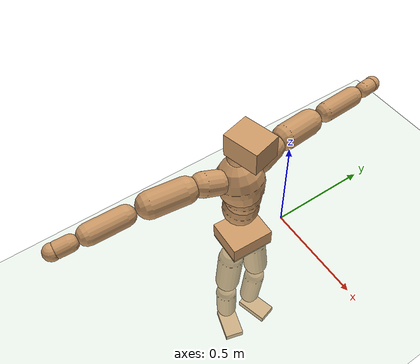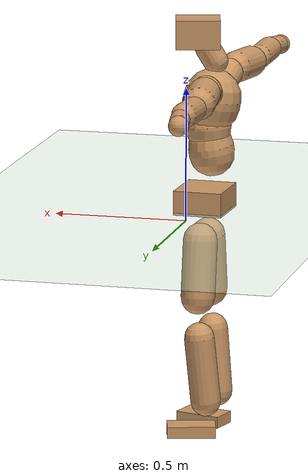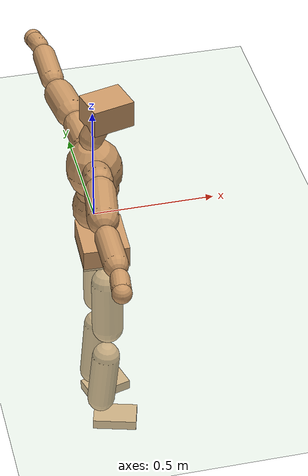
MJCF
<mujoco model="humanoid">
  <compiler coordinate="local" angle="radian"/>
  <default>
    <joint damping="0.0" armature="0.01" stiffness="0.0" limited="true"/>
    <geom conaffinity="1" condim="3" contype="7" margin="0.001" rgba="0.8 0.6 .4 1"/>
  </default>
  <asset>
    <texture type="skybox" builtin="gradient" rgb1=".4 .5 .6" rgb2="0 0 0" width="100" height="100"/>
    <texture builtin="flat" height="1278" mark="cross" markrgb="1 1 1" name="texgeom" random="0.01" rgb1="0.8 0.6 0.4" rgb2="0.8 0.6 0.4" type="cube" width="127"/>
    <texture builtin="checker" height="100" name="texplane" rgb1="0 0 0" rgb2="0.8 0.8 0.8" type="2d" width="100"/>
    <material name="MatPlane" reflectance="0.5" shininess="1" specular="1" texrepeat="60 60" texture="texplane"/>
    <material name="geom" texture="texgeom" texuniform="true"/>
  </asset>
  <worldbody>
    <light cutoff="100" diffuse="1 1 1" dir="-0 0 -1.3" directional="true" exponent="1" pos="0 0 1.3" specular=".1 .1 .1"/>
    <geom conaffinity="1" condim="3" name="floor" pos="0 0 0" rgba="0.8 0.9 0.8 1" size="100 100 .2" type="plane" material="MatPlane"/>
    <body name="Pelvis" pos="-0.0036 -0.2286 0.0427">
      <freejoint name="Pelvis"/>
      <geom type="box" contype="1" conaffinity="1" density="500" pos="-0.0109 0.0004 -0.0076" size="0.0925 0.1064 0.046" quat="0.9998 0.0000 0.0000 -0.0190" name="Pelvis"/>
      <body name="L_Hip" pos="-0.0118 0.0605 -0.0788">
        <joint name="L_Hip_x" type="hinge" pos="0 0 0" axis="1 0 0" stiffness="800" damping="80" armature="0.02" range="-180.0000 180.0000"/>
        <joint name="L_Hip_y" type="hinge" pos="0 0 0" axis="0 1 0" stiffness="800" damping="80" armature="0.02" range="-180.0000 180.0000"/>
        <joint name="L_Hip_z" type="hinge" pos="0 0 0" axis="0 0 1" stiffness="800" damping="80" armature="0.02" range="-180.0000 180.0000"/>
        <geom type="capsule" contype="1" conaffinity="1" density="500" fromto="0.0011 0.0074 -0.0719 0.0044 0.0298 -0.2876" size="0.0643" name="L_Hip"/>
        <body name="L_Knee" pos="0.0055 0.0372 -0.3595">
          <joint name="L_Knee_x" type="hinge" pos="0 0 0" axis="1 0 0" stiffness="800" damping="80" armature="0.02" range="-180.0000 180.0000"/>
          <joint name="L_Knee_y" type="hinge" pos="0 0 0" axis="0 1 0" stiffness="800" damping="80" armature="0.02" range="-180.0000 180.0000"/>
          <joint name="L_Knee_z" type="hinge" pos="0 0 0" axis="0 0 1" stiffness="800" damping="80" armature="0.02" range="-180.0000 180.0000"/>
          <geom type="capsule" contype="1" conaffinity="1" density="500" fromto="-0.0077 -0.0033 -0.0825 -0.0307 -0.0131 -0.3302" size="0.0568" name="L_Knee"/>
          <body name="L_Ankle" pos="-0.0384 -0.0164 -0.4127">
            <joint name="L_Ankle_x" type="hinge" pos="0 0 0" axis="1 0 0" stiffness="800" damping="80" armature="0.02" range="-180.0000 180.0000"/>
            <joint name="L_Ankle_y" type="hinge" pos="0 0 0" axis="0 1 0" stiffness="800" damping="80" armature="0.02" range="-180.0000 180.0000"/>
            <joint name="L_Ankle_z" type="hinge" pos="0 0 0" axis="0 0 1" stiffness="800" damping="80" armature="0.02" range="-180.0000 180.0000"/>
            <geom type="box" contype="1" conaffinity="1" density="500" pos="0.0608 0.0169 -0.0288" size="0.091 0.0505 0.0222" quat="0.9909 0.0000 0.0000 0.1348" name="L_Ankle"/>
            <body name="L_Toe" pos="0.1216 0.0337 -0.0577">
              <joint name="L_Toe_x" type="hinge" pos="0 0 0" axis="1 0 0" stiffness="500" damping="50" armature="0.02" range="-180.0000 180.0000"/>
              <joint name="L_Toe_y" type="hinge" pos="0 0 0" axis="0 1 0" stiffness="500" damping="50" armature="0.02" range="-180.0000 180.0000"/>
              <joint name="L_Toe_z" type="hinge" pos="0 0 0" axis="0 0 1" stiffness="500" damping="50" armature="0.02" range="-180.0000 180.0000"/>
              <geom type="box" contype="1" conaffinity="1" density="500" pos="0.0000 0.0000 0.0272" size="0.0011 0.0025 0.001" quat="0.9901 0.0000 0.0000 0.1402" name="L_Toe"/>
            </body>
          </body>
        </body>
      </body>
      <body name="R_Hip" pos="-0.0059 -0.0628 -0.0873">
        <joint name="R_Hip_x" type="hinge" pos="0 0 0" axis="1 0 0" stiffness="800" damping="80" armature="0.02" range="-180.0000 180.0000"/>
        <joint name="R_Hip_y" type="hinge" pos="0 0 0" axis="0 1 0" stiffness="800" damping="80" armature="0.02" range="-180.0000 180.0000"/>
        <joint name="R_Hip_z" type="hinge" pos="0 0 0" axis="0 0 1" stiffness="800" damping="80" armature="0.02" range="-180.0000 180.0000"/>
        <geom type="capsule" contype="1" conaffinity="1" density="500" fromto="-0.0015 -0.0072 -0.0721 -0.0059 -0.0289 -0.2882" size="0.0638" name="R_Hip"/>
        <body name="R_Knee" pos="-0.0074 -0.0362 -0.3603">
          <joint name="R_Knee_x" type="hinge" pos="0 0 0" axis="1 0 0" stiffness="800" damping="80" armature="0.02" range="-180.0000 180.0000"/>
          <joint name="R_Knee_y" type="hinge" pos="0 0 0" axis="0 1 0" stiffness="800" damping="80" armature="0.02" range="-180.0000 180.0000"/>
          <joint name="R_Knee_z" type="hinge" pos="0 0 0" axis="0 0 1" stiffness="800" damping="80" armature="0.02" range="-180.0000 180.0000"/>
          <geom type="capsule" contype="1" conaffinity="1" density="500" fromto="-0.0070 0.0038 -0.0811 -0.0281 0.0151 -0.3243" size="0.0568" name="R_Knee"/>
          <body name="R_Ankle" pos="-0.0352 0.0189 -0.4054">
            <joint name="R_Ankle_x" type="hinge" pos="0 0 0" axis="1 0 0" stiffness="800" damping="80" armature="0.02" range="-180.0000 180.0000"/>
            <joint name="R_Ankle_y" type="hinge" pos="0 0 0" axis="0 1 0" stiffness="800" damping="80" armature="0.02" range="-180.0000 180.0000"/>
            <joint name="R_Ankle_z" type="hinge" pos="0 0 0" axis="0 0 1" stiffness="800" damping="80" armature="0.02" range="-180.0000 180.0000"/>
            <geom type="box" contype="1" conaffinity="1" density="500" pos="0.0641 -0.0180 -0.0297" size="0.0896 0.0526 0.022" quat="0.9906 0.0000 0.0000 -0.1365" name="R_Ankle"/>
            <body name="R_Toe" pos="0.1283 -0.036 -0.0594">
              <joint name="R_Toe_x" type="hinge" pos="0 0 0" axis="1 0 0" stiffness="500" damping="50" armature="0.02" range="-180.0000 180.0000"/>
              <joint name="R_Toe_y" type="hinge" pos="0 0 0" axis="0 1 0" stiffness="500" damping="50" armature="0.02" range="-180.0000 180.0000"/>
              <joint name="R_Toe_z" type="hinge" pos="0 0 0" axis="0 0 1" stiffness="500" damping="50" armature="0.02" range="-180.0000 180.0000"/>
              <geom type="box" contype="1" conaffinity="1" density="500" pos="0.0000 0.0000 0.0291" size="0.0012 0.0026 0.0011" quat="0.9919 0.0000 0.0000 -0.1274" name="R_Toe"/>
            </body>
          </body>
        </body>
      </body>
      <body name="Torso" pos="-0.0477 0.0047 0.1203">
        <joint name="Torso_x" type="hinge" pos="0 0 0" axis="1 0 0" stiffness="1000" damping="100" armature="0.02" range="-180.0000 180.0000"/>
        <joint name="Torso_y" type="hinge" pos="0 0 0" axis="0 1 0" stiffness="1000" damping="100" armature="0.02" range="-180.0000 180.0000"/>
        <joint name="Torso_z" type="hinge" pos="0 0 0" axis="0 0 1" stiffness="1000" damping="100" armature="0.02" range="-180.0000 180.0000"/>
        <geom type="capsule" contype="1" conaffinity="1" density="500" fromto="0.0116 0.0024 0.0750 0.0078 0.0016 0.0500" size="0.0863" name="Torso"/>
        <body name="Spine" pos="0.0194 0.004 0.125">
          <joint name="Spine_x" type="hinge" pos="0 0 0" axis="1 0 0" stiffness="1000" damping="100" armature="0.02" range="-180.0000 180.0000"/>
          <joint name="Spine_y" type="hinge" pos="0 0 0" axis="0 1 0" stiffness="1000" damping="100" armature="0.02" range="-180.0000 180.0000"/>
          <joint name="Spine_z" type="hinge" pos="0 0 0" axis="0 0 1" stiffness="1000" damping="100" armature="0.02" range="-180.0000 180.0000"/>
          <geom type="capsule" contype="1" conaffinity="1" density="500" fromto="0.0023 -0.0011 0.0306 0.0015 -0.0008 0.0204" size="0.0859" name="Spine"/>
          <body name="Chest" pos="0.0038 -0.0019 0.0509">
            <joint name="Chest_x" type="hinge" pos="0 0 0" axis="1 0 0" stiffness="1000" damping="100" armature="0.02" range="-180.0000 180.0000"/>
            <joint name="Chest_y" type="hinge" pos="0 0 0" axis="0 1 0" stiffness="1000" damping="100" armature="0.02" range="-180.0000 180.0000"/>
            <joint name="Chest_z" type="hinge" pos="0 0 0" axis="0 0 1" stiffness="1000" damping="100" armature="0.02" range="-180.0000 180.0000"/>
            <geom type="capsule" contype="1" conaffinity="1" density="500" fromto="-0.0155 -0.0049 0.0861 -0.0103 -0.0032 0.0574" size="0.1086" name="Chest"/>
            <body name="Neck" pos="-0.0356 -0.0141 0.2065">
              <joint name="Neck_x" type="hinge" pos="0 0 0" axis="1 0 0" stiffness="500" damping="50" armature="0.02" range="-180.0000 180.0000"/>
              <joint name="Neck_y" type="hinge" pos="0 0 0" axis="0 1 0" stiffness="500" damping="50" armature="0.02" range="-180.0000 180.0000"/>
              <joint name="Neck_z" type="hinge" pos="0 0 0" axis="0 0 1" stiffness="500" damping="50" armature="0.02" range="-180.0000 180.0000"/>
              <geom type="capsule" contype="1" conaffinity="1" density="500" fromto="0.0097 0.0022 0.0163 0.0389 0.0088 0.0651" size="0.0472" name="Neck"/>
              <body name="Head" pos="0.0486 0.011 0.0814">
                <joint name="Head_x" type="hinge" pos="0 0 0" axis="1 0 0" stiffness="500" damping="50" armature="0.02" range="-180.0000 180.0000"/>
                <joint name="Head_y" type="hinge" pos="0 0 0" axis="0 1 0" stiffness="500" damping="50" armature="0.02" range="-180.0000 180.0000"/>
                <joint name="Head_z" type="hinge" pos="0 0 0" axis="0 0 1" stiffness="500" damping="50" armature="0.02" range="-180.0000 180.0000"/>
                <geom type="box" contype="1" conaffinity="1" density="500" pos="0.0253 0.0065 0.0417" size="0.0825 0.0655 0.0546" quat="0.9921 0.0000 0.0000 0.1253" name="Head"/>
              </body>
            </body>
            <body name="L_Thorax" pos="-0.018 0.0754 0.1127">
              <joint name="L_Thorax_x" type="hinge" pos="0 0 0" axis="1 0 0" stiffness="500" damping="50" armature="0.02" range="-180.0000 180.0000"/>
              <joint name="L_Thorax_y" type="hinge" pos="0 0 0" axis="0 1 0" stiffness="500" damping="50" armature="0.02" range="-180.0000 180.0000"/>
              <joint name="L_Thorax_z" type="hinge" pos="0 0 0" axis="0 0 1" stiffness="500" damping="50" armature="0.02" range="-180.0000 180.0000"/>
              <geom type="capsule" contype="1" conaffinity="1" density="500" fromto="-0.0050 0.0265 0.0086 -0.0198 0.1058 0.0346" size="0.0565" name="L_Thorax"/>
              <body name="L_Shoulder" pos="-0.0248 0.1323 0.0432">
                <joint name="L_Shoulder_x" type="hinge" pos="0 0 0" axis="1 0 0" stiffness="500" damping="50" armature="0.02" range="-720.0000 720.0000"/>
                <joint name="L_Shoulder_y" type="hinge" pos="0 0 0" axis="0 1 0" stiffness="500" damping="50" armature="0.02" range="-720.0000 720.0000"/>
                <joint name="L_Shoulder_z" type="hinge" pos="0 0 0" axis="0 0 1" stiffness="500" damping="50" armature="0.02" range="-720.0000 720.0000"/>
                <geom type="capsule" contype="1" conaffinity="1" density="500" fromto="-0.0058 0.0497 -0.0028 -0.0231 0.1989 -0.0113" size="0.0598" name="L_Shoulder"/>
                <body name="L_Elbow" pos="-0.0288 0.2487 -0.0141">
                  <joint name="L_Elbow_x" type="hinge" pos="0 0 0" axis="1 0 0" stiffness="500" damping="50" armature="0.02" range="-720.0000 720.0000"/>
                  <joint name="L_Elbow_y" type="hinge" pos="0 0 0" axis="0 1 0" stiffness="500" damping="50" armature="0.02" range="-720.0000 720.0000"/>
                  <joint name="L_Elbow_z" type="hinge" pos="0 0 0" axis="0 0 1" stiffness="500" damping="50" armature="0.02" range="-720.0000 720.0000"/>
                  <geom type="capsule" contype="1" conaffinity="1" density="500" fromto="-0.0009 0.0537 0.0029 -0.0036 0.2148 0.0116" size="0.046" name="L_Elbow"/>
                  <body name="L_Wrist" pos="-0.0046 0.2685 0.0145">
                    <joint name="L_Wrist_x" type="hinge" pos="0 0 0" axis="1 0 0" stiffness="300" damping="30" armature="0.02" range="-180.0000 180.0000"/>
                    <joint name="L_Wrist_y" type="hinge" pos="0 0 0" axis="0 1 0" stiffness="300" damping="30" armature="0.02" range="-180.0000 180.0000"/>
                    <joint name="L_Wrist_z" type="hinge" pos="0 0 0" axis="0 0 1" stiffness="300" damping="30" armature="0.02" range="-180.0000 180.0000"/>
                    <geom type="capsule" contype="1" conaffinity="1" density="500" fromto="-0.0032 0.0181 -0.0022 -0.0129 0.0723 -0.0090" size="0.0357" name="L_Wrist"/>
                    <body name="L_Hand" pos="-0.0161 0.0903 -0.0112">
                      <joint name="L_Hand_x" type="hinge" pos="0 0 0" axis="1 0 0" stiffness="300" damping="30" armature="0.02" range="-180.0000 180.0000"/>
                      <joint name="L_Hand_y" type="hinge" pos="0 0 0" axis="0 1 0" stiffness="300" damping="30" armature="0.02" range="-180.0000 180.0000"/>
                      <joint name="L_Hand_z" type="hinge" pos="0 0 0" axis="0 0 1" stiffness="300" damping="30" armature="0.02" range="-180.0000 180.0000"/>
                      <geom type="sphere" contype="1" conaffinity="1" density="500" size="0.0371" pos="0.0000 0.0000 0.0000" name="L_Hand"/>
                    </body>
                  </body>
                </body>
              </body>
            </body>
            <body name="R_Thorax" pos="-0.0237 -0.0856 0.111">
              <joint name="R_Thorax_x" type="hinge" pos="0 0 0" axis="1 0 0" stiffness="500" damping="50" armature="0.02" range="-180.0000 180.0000"/>
              <joint name="R_Thorax_y" type="hinge" pos="0 0 0" axis="0 1 0" stiffness="500" damping="50" armature="0.02" range="-180.0000 180.0000"/>
              <joint name="R_Thorax_z" type="hinge" pos="0 0 0" axis="0 0 1" stiffness="500" damping="50" armature="0.02" range="-180.0000 180.0000"/>
              <geom type="capsule" contype="1" conaffinity="1" density="500" fromto="-0.0026 -0.0238 0.0090 -0.0103 -0.0953 0.0361" size="0.0559" name="R_Thorax"/>
              <body name="R_Shoulder" pos="-0.0129 -0.1191 0.0452">
                <joint name="R_Shoulder_x" type="hinge" pos="0 0 0" axis="1 0 0" stiffness="500" damping="50" armature="0.02" range="-720.0000 720.0000"/>
                <joint name="R_Shoulder_y" type="hinge" pos="0 0 0" axis="0 1 0" stiffness="500" damping="50" armature="0.02" range="-720.0000 720.0000"/>
                <joint name="R_Shoulder_z" type="hinge" pos="0 0 0" axis="0 0 1" stiffness="500" damping="50" armature="0.02" range="-720.0000 720.0000"/>
                <geom type="capsule" contype="1" conaffinity="1" density="500" fromto="-0.0077 -0.0511 -0.0018 -0.0307 -0.2045 -0.0072" size="0.0598" name="R_Shoulder"/>
                <body name="R_Elbow" pos="-0.0384 -0.2557 -0.009">
                  <joint name="R_Elbow_x" type="hinge" pos="0 0 0" axis="1 0 0" stiffness="500" damping="50" armature="0.02" range="-720.0000 720.0000"/>
                  <joint name="R_Elbow_y" type="hinge" pos="0 0 0" axis="0 1 0" stiffness="500" damping="50" armature="0.02" range="-720.0000 720.0000"/>
                  <joint name="R_Elbow_z" type="hinge" pos="0 0 0" axis="0 0 1" stiffness="500" damping="50" armature="0.02" range="-720.0000 720.0000"/>
                  <geom type="capsule" contype="1" conaffinity="1" density="500" fromto="-0.0008 -0.0532 0.0008 -0.0034 -0.2127 0.0033" size="0.0463" name="R_Elbow"/>
                  <body name="R_Wrist" pos="-0.0042 -0.2659 0.0041">
                    <joint name="R_Wrist_x" type="hinge" pos="0 0 0" axis="1 0 0" stiffness="300" damping="30" armature="0.02" range="-180.0000 180.0000"/>
                    <joint name="R_Wrist_y" type="hinge" pos="0 0 0" axis="0 1 0" stiffness="300" damping="30" armature="0.02" range="-180.0000 180.0000"/>
                    <joint name="R_Wrist_z" type="hinge" pos="0 0 0" axis="0 0 1" stiffness="300" damping="30" armature="0.02" range="-180.0000 180.0000"/>
                    <geom type="capsule" contype="1" conaffinity="1" density="500" fromto="-0.0021 -0.0182 -0.0019 -0.0083 -0.0730 -0.0074" size="0.0362" name="R_Wrist"/>
                    <body name="R_Hand" pos="-0.0104 -0.0912 -0.0093">
                      <joint name="R_Hand_x" type="hinge" pos="0 0 0" axis="1 0 0" stiffness="300" damping="30" armature="0.02" range="-180.0000 180.0000"/>
                      <joint name="R_Hand_y" type="hinge" pos="0 0 0" axis="0 1 0" stiffness="300" damping="30" armature="0.02" range="-180.0000 180.0000"/>
                      <joint name="R_Hand_z" type="hinge" pos="0 0 0" axis="0 0 1" stiffness="300" damping="30" armature="0.02" range="-180.0000 180.0000"/>
                      <geom type="sphere" contype="1" conaffinity="1" density="500" size="0.0372" pos="0.0000 0.0000 0.0000" name="R_Hand"/>
                    </body>
                  </body>
                </body>
              </body>
            </body>
          </body>
        </body>
      </body>
    </body>
  </worldbody>
  <actuator>
    <motor name="L_Hip_x" joint="L_Hip_x" gear="500"/>
    <motor name="L_Hip_y" joint="L_Hip_y" gear="500"/>
    <motor name="L_Hip_z" joint="L_Hip_z" gear="500"/>
    <motor name="L_Knee_x" joint="L_Knee_x" gear="500"/>
    <motor name="L_Knee_y" joint="L_Knee_y" gear="500"/>
    <motor name="L_Knee_z" joint="L_Knee_z" gear="500"/>
    <motor name="L_Ankle_x" joint="L_Ankle_x" gear="500"/>
    <motor name="L_Ankle_y" joint="L_Ankle_y" gear="500"/>
    <motor name="L_Ankle_z" joint="L_Ankle_z" gear="500"/>
    <motor name="L_Toe_x" joint="L_Toe_x" gear="500"/>
    <motor name="L_Toe_y" joint="L_Toe_y" gear="500"/>
    <motor name="L_Toe_z" joint="L_Toe_z" gear="500"/>
    <motor name="R_Hip_x" joint="R_Hip_x" gear="500"/>
    <motor name="R_Hip_y" joint="R_Hip_y" gear="500"/>
    <motor name="R_Hip_z" joint="R_Hip_z" gear="500"/>
    <motor name="R_Knee_x" joint="R_Knee_x" gear="500"/>
    <motor name="R_Knee_y" joint="R_Knee_y" gear="500"/>
    <motor name="R_Knee_z" joint="R_Knee_z" gear="500"/>
    <motor name="R_Ankle_x" joint="R_Ankle_x" gear="500"/>
    <motor name="R_Ankle_y" joint="R_Ankle_y" gear="500"/>
    <motor name="R_Ankle_z" joint="R_Ankle_z" gear="500"/>
    <motor name="R_Toe_x" joint="R_Toe_x" gear="500"/>
    <motor name="R_Toe_y" joint="R_Toe_y" gear="500"/>
    <motor name="R_Toe_z" joint="R_Toe_z" gear="500"/>
    <motor name="Torso_x" joint="Torso_x" gear="500"/>
    <motor name="Torso_y" joint="Torso_y" gear="500"/>
    <motor name="Torso_z" joint="Torso_z" gear="500"/>
    <motor name="Spine_x" joint="Spine_x" gear="500"/>
    <motor name="Spine_y" joint="Spine_y" gear="500"/>
    <motor name="Spine_z" joint="Spine_z" gear="500"/>
    <motor name="Chest_x" joint="Chest_x" gear="500"/>
    <motor name="Chest_y" joint="Chest_y" gear="500"/>
    <motor name="Chest_z" joint="Chest_z" gear="500"/>
    <motor name="Neck_x" joint="Neck_x" gear="500"/>
    <motor name="Neck_y" joint="Neck_y" gear="500"/>
    <motor name="Neck_z" joint="Neck_z" gear="500"/>
    <motor name="Head_x" joint="Head_x" gear="500"/>
    <motor name="Head_y" joint="Head_y" gear="500"/>
    <motor name="Head_z" joint="Head_z" gear="500"/>
    <motor name="L_Thorax_x" joint="L_Thorax_x" gear="500"/>
    <motor name="L_Thorax_y" joint="L_Thorax_y" gear="500"/>
    <motor name="L_Thorax_z" joint="L_Thorax_z" gear="500"/>
    <motor name="L_Shoulder_x" joint="L_Shoulder_x" gear="500"/>
    <motor name="L_Shoulder_y" joint="L_Shoulder_y" gear="500"/>
    <motor name="L_Shoulder_z" joint="L_Shoulder_z" gear="500"/>
    <motor name="L_Elbow_x" joint="L_Elbow_x" gear="500"/>
    <motor name="L_Elbow_y" joint="L_Elbow_y" gear="500"/>
    <motor name="L_Elbow_z" joint="L_Elbow_z" gear="500"/>
    <motor name="L_Wrist_x" joint="L_Wrist_x" gear="500"/>
    <motor name="L_Wrist_y" joint="L_Wrist_y" gear="500"/>
    <motor name="L_Wrist_z" joint="L_Wrist_z" gear="500"/>
    <motor name="L_Hand_x" joint="L_Hand_x" gear="500"/>
    <motor name="L_Hand_y" joint="L_Hand_y" gear="500"/>
    <motor name="L_Hand_z" joint="L_Hand_z" gear="500"/>
    <motor name="R_Thorax_x" joint="R_Thorax_x" gear="500"/>
    <motor name="R_Thorax_y" joint="R_Thorax_y" gear="500"/>
    <motor name="R_Thorax_z" joint="R_Thorax_z" gear="500"/>
    <motor name="R_Shoulder_x" joint="R_Shoulder_x" gear="500"/>
    <motor name="R_Shoulder_y" joint="R_Shoulder_y" gear="500"/>
    <motor name="R_Shoulder_z" joint="R_Shoulder_z" gear="500"/>
    <motor name="R_Elbow_x" joint="R_Elbow_x" gear="500"/>
    <motor name="R_Elbow_y" joint="R_Elbow_y" gear="500"/>
    <motor name="R_Elbow_z" joint="R_Elbow_z" gear="500"/>
    <motor name="R_Wrist_x" joint="R_Wrist_x" gear="500"/>
    <motor name="R_Wrist_y" joint="R_Wrist_y" gear="500"/>
    <motor name="R_Wrist_z" joint="R_Wrist_z" gear="500"/>
    <motor name="R_Hand_x" joint="R_Hand_x" gear="500"/>
    <motor name="R_Hand_y" joint="R_Hand_y" gear="500"/>
    <motor name="R_Hand_z" joint="R_Hand_z" gear="500"/>
  </actuator>
  <contact>
    <exclude body1="Torso" body2="Chest"/>
    <exclude body1="Head" body2="Chest"/>
    <exclude body1="R_Knee" body2="R_Toe"/>
    <exclude body1="R_Knee" body2="L_Ankle"/>
    <exclude body1="R_Knee" body2="L_Toe"/>
    <exclude body1="L_Knee" body2="L_Toe"/>
    <exclude body1="L_Knee" body2="R_Ankle"/>
    <exclude body1="L_Knee" body2="R_Toe"/>
    <exclude body1="L_Shoulder" body2="Chest"/>
    <exclude body1="R_Shoulder" body2="Chest"/>
  </contact>
  <sensor/>
  <size njmax="700" nconmax="700"/>
</mujoco>
